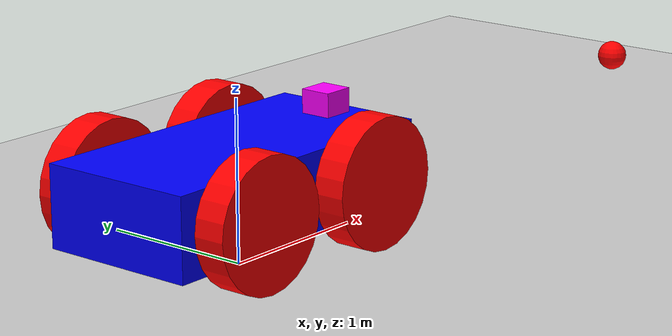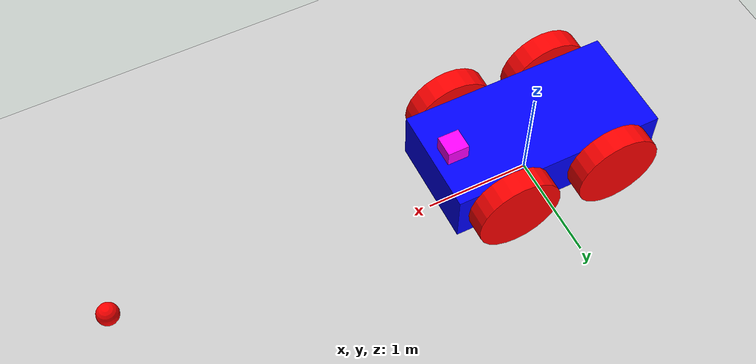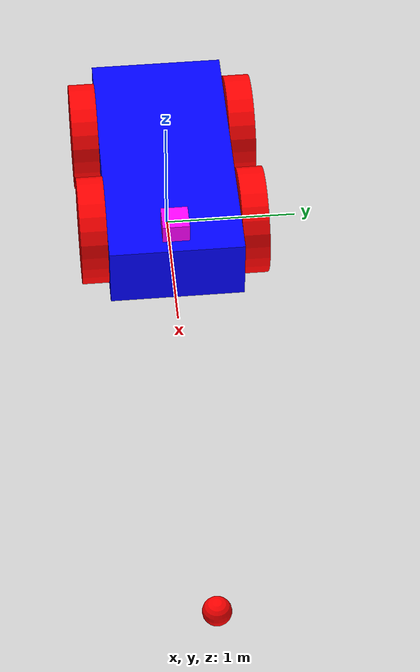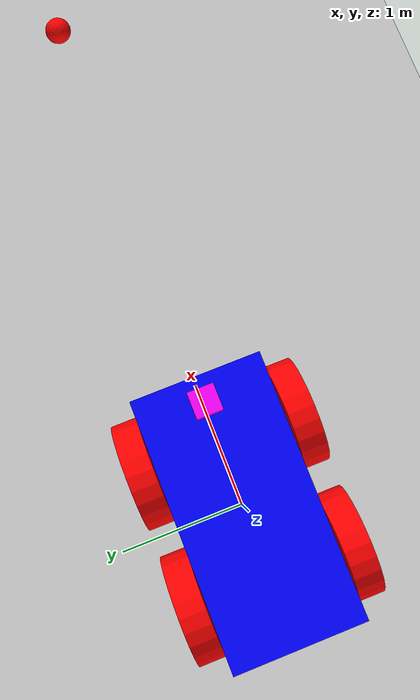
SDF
<?xml version="1.0"?>
<sdf version="1.10">

    <world name="color_ball_tracking_world">
        <!-- Nastavenie fyziky -->
        <physics name="1ms" type="ignored">
            <max_step_size>0.001</max_step_size>
            <real_time_factor>1.0</real_time_factor>
        </physics>

        <!-- Pluginy pre Gazebo -->
        <plugin filename="gz-sim-physics-system"
            name="gz::sim::systems::Physics">
        </plugin>
        <plugin filename="gz-sim-user-commands-system"
            name="gz::sim::systems::UserCommands">
        </plugin>
        <plugin filename="gz-sim-scene-broadcaster-system"
            name="gz::sim::systems::SceneBroadcaster">
        </plugin>

        <!-- Svetlo -->
        <light type="directional" name="slnko">
            <cast_shadows>true</cast_shadows>
            <pose>0 0 10 0 0 0</pose>
            <diffuse>0.8 0.8 0.8 1</diffuse>
            <specular>0.2 0.2 0.2 1</specular>
            <attenuation>
                <range>1000</range>
                <constant>0.9</constant>
                <linear>0.01</linear>
                <quadratic>0.001</quadratic>
            </attenuation>
            <direction>-0.5 0.1 -0.9</direction>
        </light>

        <!-- Rovina zeme -->
        <model name="rovina_zeme">
            <static>true</static>
            <link name="link">
                <collision name="collision">
                    <geometry>
                        <plane>
                            <normal>0 0 1</normal>
                        </plane>
                    </geometry>
                </collision>
                <visual name="visual">
                    <geometry>
                        <plane>
                            <normal>0 0 1</normal>
                            <size>100 100</size>
                        </plane>
                    </geometry>
                    <material>
                        <ambient>0.8 0.8 0.8 1</ambient>
                        <diffuse>0.8 0.8 0.8 1</diffuse>
                        <specular>0.8 0.8 0.8 1</specular>
                    </material>
                </visual>
            </link>
        </model>

        <!-- Robot -->
        <include>
            <pose>0 0 0.5 0 0 0</pose>
            <uri>model://wave_rover_4wd</uri> <!-- Názov modelu robota -->
        </include>

        <!-- Loptička -->
        <include>
            <pose>4 0 0.5 0 0 0</pose>
            <uri>model://color_ball</uri> <!-- Názov modelu loptičky -->
        </include>

    </world>
</sdf>

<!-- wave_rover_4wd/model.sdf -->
<sdf version="1.10">

    <model name="wave_rover_4wd" canonical_link="telo">
        <!-- Telo robota -->
        <link name="telo">
            <collision name="collision">
                <geometry>
                    <box><size>2.0 1.0 0.5</size></box>
                </geometry>
            </collision>
            <visual name="visual">
                <geometry>
                   <box><size>2.0 1.0 0.5</size></box>
                </geometry>
                <material>
                    <ambient>0.0 0.0 1.0 1</ambient>
                    <diffuse>0.0 0.0 1.0 1</diffuse>
                    <specular>0.0 0.0 1.0 1</specular>
                </material>
            </visual>
        </link>

        <!-- Zadné ľavé koleso -->
        <link name="zadne_lave_koleso">
            <pose relative_to="telo">-0.5 0.6 0 -1.5707 0 0</pose>
            <collision name="collision">
                <geometry>
                    <cylinder><radius>0.4</radius><length>0.2</length></cylinder>
                </geometry>
            </collision>
            <visual name="visual">
                <geometry>
                   <cylinder><radius>0.4</radius><length>0.2</length></cylinder>
                </geometry>
                <material>
                    <ambient>1.0 0.0 0.0 1</ambient>
                    <diffuse>1.0 0.0 0.0 1</diffuse>
                    <specular>1.0 0.0 0.0 1</specular>
                </material>
            </visual>
        </link>

        <joint name="zadne_lave_koleso_zaves" type="revolute">
            <pose relative_to="zadne_lave_koleso"/>
            <parent>telo</parent>
            <child>zadne_lave_koleso</child>
            <axis>
                <xyz expressed_in="__model__">0 1 0</xyz>
                <limit>
                    <lower>-1.79769e+308</lower>
                    <upper>1.79769e+308</upper>
                </limit>
            </axis>
        </joint>

        <!-- Zadné pravé koleso -->
        <link name="zadne_prave_koleso">
            <pose relative_to="telo">-0.5 -0.6 0 -1.5707 0 0</pose>
            <collision name="collision">
                <geometry>
                    <cylinder><radius>0.4</radius><length>0.2</length></cylinder>
                </geometry>
            </collision>
            <visual name="visual">
                <geometry>
                   <cylinder><radius>0.4</radius><length>0.2</length></cylinder>
                </geometry>
                <material>
                    <ambient>1.0 0.0 0.0 1</ambient>
                    <diffuse>1.0 0.0 0.0 1</diffuse>
                    <specular>1.0 0.0 0.0 1</specular>
                </material>
            </visual>
        </link>

        <joint name="zadne_prave_koleso_zaves" type="revolute">
            <pose relative_to="zadne_prave_koleso"/>
            <parent>telo</parent>
            <child>zadne_prave_koleso</child>
            <axis>
                <xyz expressed_in="__model__">0 1 0</xyz>
                <limit>
                    <lower>-1.79769e+308</lower>
                    <upper>1.79769e+308</upper>
                </limit>
            </axis>
        </joint>

        <!-- Predné ľavé koleso -->
        <link name="predne_lave_koleso">
            <pose relative_to="telo">0.5 0.6 0 -1.5707 0 0</pose>
            <collision name="collision">
                <geometry>
                    <cylinder><radius>0.4</radius><length>0.2</length></cylinder>
                </geometry>
            </collision>
            <visual name="visual">
                <geometry>
                   <cylinder><radius>0.4</radius><length>0.2</length></cylinder>
                </geometry>
                <material>
                    <ambient>1.0 0.0 0.0 1</ambient>
                    <diffuse>1.0 0.0 0.0 1</diffuse>
                    <specular>1.0 0.0 0.0 1</specular>
                </material>
            </visual>
        </link>

        <joint name="predne_lave_koleso_zaves" type="revolute">
            <pose relative_to="predne_lave_koleso"/>
            <parent>telo</parent>
            <child>predne_lave_koleso</child>
            <axis>
                <xyz expressed_in="__model__">0 1 0</xyz>
                <limit>
                    <lower>-1.79769e+308</lower>
                    <upper>1.79769e+308</upper>
                </limit>
            </axis>
        </joint>

        <!-- Predné pravé koleso -->
        <link name="predne_prave_koleso">
            <pose relative_to="telo">0.5 -0.6 0 -1.5707 0 0</pose>
            <collision name="collision">
                <geometry>
                    <cylinder><radius>0.4</radius><length>0.2</length></cylinder>
                </geometry>
            </collision>
            <visual name="visual">
                <geometry>
                   <cylinder><radius>0.4</radius><length>0.2</length></cylinder>
                </geometry>
                <material>
                    <ambient>1.0 0.0 0.0 1</ambient>
                    <diffuse>1.0 0.0 0.0 1</diffuse>
                    <specular>1.0 0.0 0.0 1</specular>
                </material>
            </visual>
        </link>

        <joint name="predne_prave_koleso_zaves" type="revolute">
            <pose relative_to="predne_prave_koleso"/>
            <parent>telo</parent>
            <child>predne_prave_koleso</child>
            <axis>
                <xyz expressed_in="__model__">0 1 0</xyz>
                <limit>
                    <lower>-1.79769e+308</lower>
                    <upper>1.79769e+308</upper>
                </limit>
            </axis>
        </joint>

        <!-- Kamera -->
        <frame name="camera_frame" attached_to="telo">
            <pose>0.8 0 0.3 0 0 0</pose>
        </frame>

        <link name="camera">
            <pose relative_to="camera_frame"></pose>
            <collision name="collision">
                <geometry>
                    <box><size>0.2 0.2 0.2</size></box>
                </geometry>
            </collision>
            <visual name="visual">
                <geometry>
                   <box><size>0.2 0.2 0.2</size></box>
                </geometry>
                <material>
                    <ambient>1.0 0.0 1.0 1</ambient>
                    <diffuse>1.0 0.0 1.0 1</diffuse>
                    <specular>1.0 0.0 1.0 1</specular>
                </material>
            </visual>

            <sensor name="camera" type="camera">
                <pose relative_to="camera_frame">0 0 0 0 0 0</pose>
                <camera>
                    <horizontal_fov>1.047</horizontal_fov> <!-- 60 degrees -->
                    <image>
                        <width>640</width>
                        <height>480</height>
                        <format>R8G8B8</format>
                    </image>
                    <clip>
                        <near>0.1</near>
                        <far>100</far>
                    </clip>
                </camera>
                <always_on>1</always_on>
                <update_rate>30</update_rate>
                <visualize>true</visualize>
                <topic>camera/image</topic>
            </sensor>
        </link>

        <joint name="camera_zaves" type="fixed">
            <parent>telo</parent>
            <child>camera</child>
        </joint>

        <!-- Pluginy -->
        <plugin filename="gz-sim-sensors-system" name="gz::sim::systems::Sensors">
            <render_engine>ogre2</render_engine>
        </plugin>

        <plugin filename="gz-sim-diff-drive-system" name="gz::sim::systems::DiffDrive">
            <left_joint>zadne_lave_koleso_zaves</left_joint>
            <right_joint>zadne_prave_koleso_zaves</right_joint>
            <left_joint>predne_lave_koleso_zaves</left_joint> <!-- Pridané predné kolesá -->
            <right_joint>predne_prave_koleso_zaves</right_joint> <!-- Pridané predné kolesá -->
            <wheel_separation>1.2</wheel_separation>
            <wheel_radius>0.4</wheel_radius>
            <odom_publish_frequency>1</odom_publish_frequency>
            <topic>cmd_vel</topic>
            <odom_topic>odom</odom_topic>
            <tf_topic>tf</tf_topic>
            <frame_id>odom</frame_id>
            <child_frame_id>telo</child_frame_id>
        </plugin>

        <plugin filename="gz-sim-joint-state-publisher-system"
            name="gz::sim::systems::JointStatePublisher">
            <topic>joint_states</topic>
            <joint_name>zadne_lave_koleso_zaves</joint_name>
            <joint_name>zadne_prave_koleso_zaves</joint_name>
            <joint_name>predne_lave_koleso_zaves</joint_name>
            <joint_name>predne_prave_koleso_zaves</joint_name>
        </plugin>
    </model>
</sdf>

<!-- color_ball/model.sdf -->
<sdf version="1.10">
  <model name="color_ball">
    <link name="link">
      <collision name="collision">
        <geometry>
          <sphere><radius>0.1</radius></sphere>
        </geometry>
      </collision>
      <visual name="visual">
        <geometry>
          <sphere><radius>0.1</radius></sphere>
        </geometry>
        <material>
          <ambient>1.0 0.0 0.0 1</ambient>
          <diffuse>1.0 0.0 0.0 1</diffuse>
          <specular>1.0 0.0 0.0 1</specular>
        </material>
      </visual>
      <inertial>
        <mass>1.0</mass>
        <inertia>
          <ixx>0.1</ixx>
          <iyy>0.1</iyy>
          <izz>0.1</izz>
        </inertia>
      </inertial>
    </link>

      <!-- Plugin na riadenie pohybu loptičky -->
    <plugin filename="gz-sim-velocity-control-system" name="gz::sim::systems::VelocityControl">
      <topic>/ball_cmd_vel</topic>
      <frame>link</frame>
    </plugin>
  </model>
</sdf>
